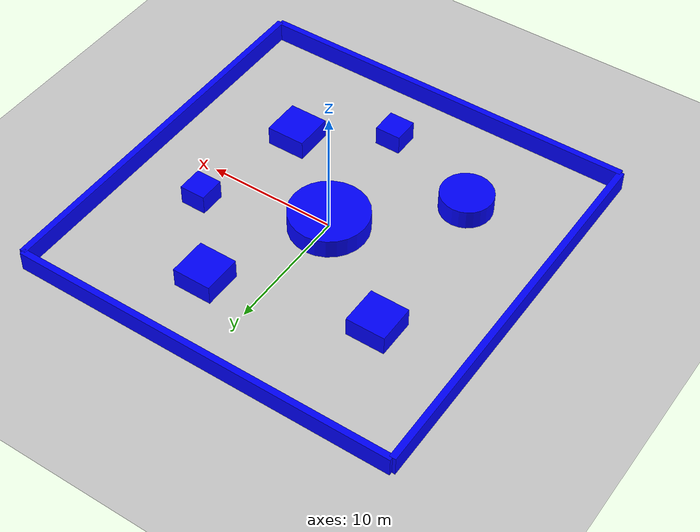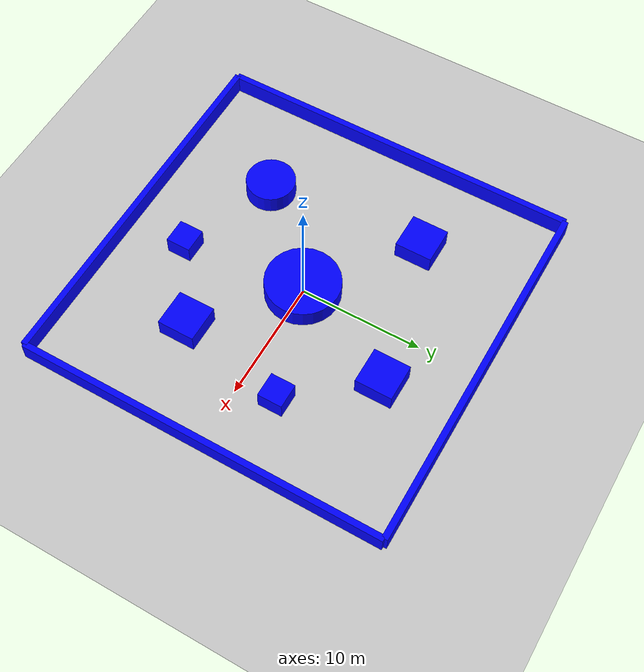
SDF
<sdf version="1.8">
 <world name="sim_world">
  <model name="environment">
   <static>true</static>
   <link name="ground">
    <collision name="collision"><geometry><plane><normal>0 0 1</normal></plane></geometry></collision>
    <visual name="visual">
     <geometry><plane><normal>0 0 1</normal><size>100 100</size></plane></geometry>
     <material>
      <ambient>0.8 0.8 0.8 1</ambient>
      <diffuse>0.8 0.8 0.8 1</diffuse>
      <specular>0.8 0.8 0.8 1</specular>
     </material>
    </visual>
   </link>
  </model>
  <model name="wall">
   <static>true</static>
   <pose>0 -15 0 0 0 0</pose>
   <link name="box">
    <visual name="visual">
     <geometry><box><size>30 0.5 3.0</size></box></geometry>
     <material>
      <ambient>0.0 0.0 1.0 1</ambient>
      <diffuse>0.0 0.0 1.0 1</diffuse>
      <specular>0.0 0.0 1.0 1</specular>
     </material>
    </visual>
    <collision name="collision"><geometry><box><size>30 0.5 3.0</size></box></geometry></collision>
   </link>
  </model>
  <model name="wall1">
   <static>true</static>
   <pose>0 15 0 0 0 0</pose>
   <link name="box">
    <visual name="visual">
     <geometry><box><size>30 0.5 3.0</size></box></geometry>
     <material>
      <ambient>0.0 0.0 1.0 1</ambient>
      <diffuse>0.0 0.0 1.0 1</diffuse>
      <specular>0.0 0.0 1.0 1</specular>
     </material>
    </visual>
    <collision name="collision"><geometry><box><size>30 0.5 3.0</size></box></geometry></collision>
   </link>
  </model>
  <model name="wall2">
   <static>true</static>
   <pose>15 0 0 0 0 0</pose>
   <link name="box">
    <visual name="visual">
     <geometry><box><size>0.5 30 3.0</size></box></geometry>
     <material>
      <ambient>0.0 0.0 1.0 1</ambient>
      <diffuse>0.0 0.0 1.0 1</diffuse>
      <specular>0.0 0.0 1.0 1</specular>
     </material>
    </visual>
    <collision name="collision"><geometry><box><size>0.5 30 3.0</size></box></geometry></collision>
   </link>
  </model>
  <model name="wall3">
   <static>true</static>
   <pose>-15 0 0 0 0 0</pose>
   <link name="box">
    <visual name="visual">
     <geometry><box><size>0.5 30 3.0</size></box></geometry>
     <material>
      <ambient>0.0 0.0 1.0 1</ambient>
      <diffuse>0.0 0.0 1.0 1</diffuse>
      <specular>0.0 0.0 1.0 1</specular>
     </material>
    </visual>
    <collision name="collision"><geometry><box><size>0.5 30 3.0</size></box></geometry></collision>
   </link>
  </model>
  <model name="box1">
   <static>true</static>
   <pose>7 -6 0 0 0 0</pose>
   <link name="box">
    <visual name="visual">
     <geometry><box><size>3 3 3.0</size></box></geometry>
     <material>
      <ambient>0.0 0.0 1.0 1</ambient>
      <diffuse>0.0 0.0 1.0 1</diffuse>
      <specular>0.0 0.0 1.0 1</specular>
     </material>
    </visual>
    <collision name="collision"><geometry><box><size>3 3 3.0</size></box></geometry></collision>
   </link>
  </model>
  <model name="box2">
   <static>true</static>
   <pose>-8 6 0 0 0 0</pose>
   <link name="box">
    <visual name="visual">
     <geometry><box><size>3 3 3.0</size></box></geometry>
     <material>
      <ambient>0.0 0.0 1.0 1</ambient>
      <diffuse>0.0 0.0 1.0 1</diffuse>
      <specular>0.0 0.0 1.0 1</specular>
     </material>
    </visual>
    <collision name="collision"><geometry><box><size>3 3 3.0</size></box></geometry></collision>
   </link>
  </model>
  <model name="box3">
   <static>true</static>
   <pose>4 9 0 0 0 0</pose>
   <link name="box">
    <visual name="visual">
     <geometry><box><size>3 3 3.0</size></box></geometry>
     <material>
      <ambient>0.0 0.0 1.0 1</ambient>
      <diffuse>0.0 0.0 1.0 1</diffuse>
      <specular>0.0 0.0 1.0 1</specular>
     </material>
    </visual>
    <collision name="collision"><geometry><box><size>3 3 3.0</size></box></geometry></collision>
   </link>
  </model>
  <model name="box4">
   <static>true</static>
   <pose>9 3 0 0 0 0</pose>
   <link name="box">
    <visual name="visual">
     <geometry><box><size>2 2 3.0</size></box></geometry>
     <material>
      <ambient>0.0 0.0 1.0 1</ambient>
      <diffuse>0.0 0.0 1.0 1</diffuse>
      <specular>0.0 0.0 1.0 1</specular>
     </material>
    </visual>
    <collision name="collision"><geometry><box><size>2 2 3.0</size></box></geometry></collision>
   </link>
  </model>
  <model name="box5">
   <static>true</static>
   <pose>1 -10 0 0 0 0</pose>
   <link name="box">
    <visual name="visual">
     <geometry><box><size>2 2 3.0</size></box></geometry>
     <material>
      <ambient>0.0 0.0 1.0 1</ambient>
      <diffuse>0.0 0.0 1.0 1</diffuse>
      <specular>0.0 0.0 1.0 1</specular>
     </material>
    </visual>
    <collision name="collision"><geometry><box><size>2 2 3.0</size></box></geometry></collision>
   </link>
  </model>
  <model name="cyl1">
   <static>true</static>
   <link name="box">
    <visual name="visual">
     <geometry><cylinder><radius>3</radius><length>3</length></cylinder></geometry>
     <material>
      <ambient>0.0 0.0 1.0 1</ambient>
      <diffuse>0.0 0.0 1.0 1</diffuse>
      <specular>0.0 0.0 1.0 1</specular>
     </material>
    </visual>
    <collision name="collision">
     <geometry><cylinder><radius>3</radius><length>3</length></cylinder></geometry>
    </collision>
   </link>
  </model>
  <model name="cyl2">
   <static>true</static>
   <pose>-7 -7 0 0 0 0</pose>
   <link name="box">
    <visual name="visual">
     <geometry><cylinder><radius>2</radius><length>3</length></cylinder></geometry>
     <material>
      <ambient>0.0 0.0 1.0 1</ambient>
      <diffuse>0.0 0.0 1.0 1</diffuse>
      <specular>0.0 0.0 1.0 1</specular>
     </material>
    </visual>
    <collision name="collision">
     <geometry><cylinder><radius>2</radius><length>3</length></cylinder></geometry>
    </collision>
   </link>
  </model>
 </world>
</sdf>
